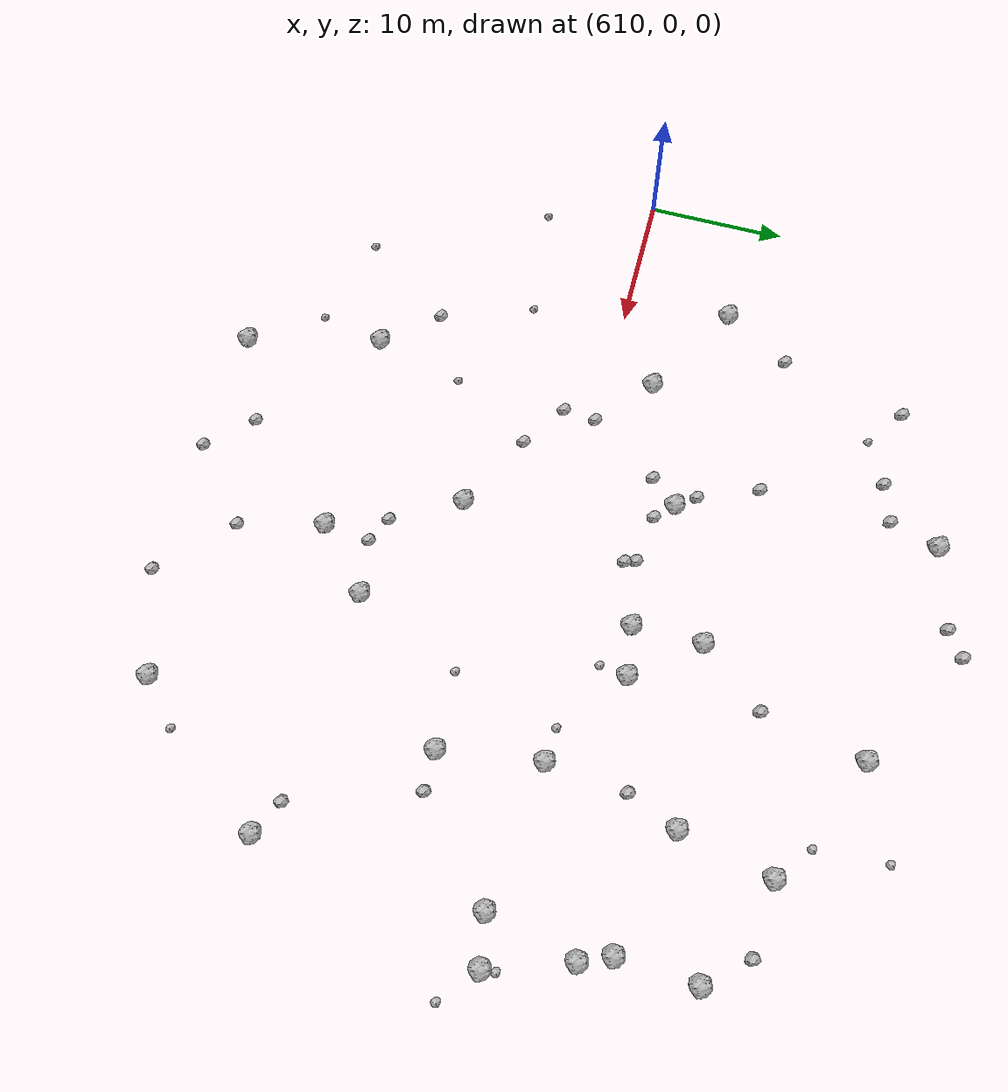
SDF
<sdf version="1.6">
 <world name="default">
  <include><uri>model://sun</uri></include>
  <model name="rock1_16_3">
   <include><uri>model://rock1</uri><pose>663.9839810396462 14.858126800491888 0.5 0 0 0</pose></include>
  </model>
  <model name="rock1_16_4">
   <include><uri>model://rock1</uri><pose>663.6268829936251 9.395405496233465 0.5 0 0 0</pose></include>
  </model>
  <model name="rock1_16_5">
   <include><uri>model://rock1</uri><pose>646.4304502982478 6.268293450251569 0.5 0 0 0</pose></include>
  </model>
  <model name="rock1_16_6">
   <include><uri>model://rock1</uri><pose>656.7651096066355 18.060827525840487 0.5 0 0 0</pose></include>
  </model>
  <model name="rock1_16_7">
   <include><uri>model://rock1</uri><pose>618.0501001737933 7.411580409489751 0.5 0 0 0</pose></include>
  </model>
  <model name="rock1_16_8">
   <include><uri>model://rock1</uri><pose>653.2391727089505 2.3955745746037564 0.5 0 0 0</pose></include>
  </model>
  <model name="rock1_16_9">
   <include><uri>model://rock1</uri><pose>628.6609307013968 -26.469568294084866 0.5 0 0 0</pose></include>
  </model>
  <model name="rock1_16_10">
   <include><uri>model://rock1</uri><pose>641.165644042891 -16.428117646576375 0.5 0 0 0</pose></include>
  </model>
  <model name="rock1_16_11">
   <include><uri>model://rock1</uri><pose>643.0220323820561 5.783675593286908 0.5 0 0 0</pose></include>
  </model>
  <model name="rock1_16_12">
   <include><uri>model://rock1</uri><pose>632.4016616064933 24.972848576259736 0.5 0 0 0</pose></include>
  </model>
  <model name="rock1_16_13">
   <include><uri>model://rock1</uri><pose>624.9864135552572 3.219790168667494 0.5 0 0 0</pose></include>
  </model>
  <model name="rock1_16_14">
   <include><uri>model://rock1</uri><pose>648.1177195782875 22.50889631202896 0.5 0 0 0</pose></include>
  </model>
  <model name="rock1_16_15">
   <include><uri>model://rock1</uri><pose>662.1648006343937 -14.443501732474807 0.5 0 0 0</pose></include>
  </model>
  <model name="rock1_16_16">
   <include><uri>model://rock1</uri><pose>655.3175418764399 11.559568303505692 0.5 0 0 0</pose></include>
  </model>
  <model name="rock1_16_17">
   <include><uri>model://rock1</uri><pose>645.3293199828311 -12.56731275519914 0.5 0 0 0</pose></include>
  </model>
  <model name="rock1_16_18">
   <include><uri>model://rock1</uri><pose>637.099699458307 -7.599706671071601 0.5 0 0 0</pose></include>
  </model>
  <model name="rock1_16_19">
   <include><uri>model://rock1</uri><pose>643.0548697132596 10.708641378340424 0.5 0 0 0</pose></include>
  </model>
  <model name="rock1_16_20">
   <include><uri>model://rock1</uri><pose>664.4875304192019 7.300606530794553 0.5 0 0 0</pose></include>
  </model>
  <model name="rock1_16_21">
   <include><uri>model://rock1</uri><pose>633.816081906783 6.769114878999865 0.5 0 0 0</pose></include>
  </model>
  <model name="rock1_16_22">
   <include><uri>model://rock1</uri><pose>663.0348168435659 1.105856339352961 0.5 0 0 0</pose></include>
  </model>
  <model name="rock1_16_23">
   <include><uri>model://rock1</uri><pose>666.3390924365694 1.7028334681616215 0.5 0 0 0</pose></include>
  </model>
  <model name="rock1_16_24">
   <include><uri>model://rock1</uri><pose>654.2324856321353 -4.658314810284992 0.5 0 0 0</pose></include>
  </model>
  <model name="rock1_16_25">
   <include><uri>model://rock1</uri><pose>654.1780633570514 -24.425604272603895 0.5 0 0 0</pose></include>
  </model>
  <model name="rock1_16_26">
   <include><uri>model://rock1</uri><pose>626.3959073936533 -16.988443525504092 0.5 0 0 0</pose></include>
  </model>
  <model name="rock2_16_0">
   <include><uri>model://rock2</uri><pose>646.5864906179073 15.31418446239718 0.3 0 0 0</pose></include>
  </model>
  <model name="rock2_16_1">
   <include><uri>model://rock2</uri><pose>623.2343438048462 -13.237329178143483 0.3 0 0 0</pose></include>
  </model>
  <model name="rock2_16_2">
   <include><uri>model://rock2</uri><pose>628.4746151739505 -2.5015913981875713 0.3 0 0 0</pose></include>
  </model>
  <model name="rock2_16_3">
   <include><uri>model://rock2</uri><pose>634.7114917537693 -23.75226121748298 0.3 0 0 0</pose></include>
  </model>
  <model name="rock2_16_4">
   <include><uri>model://rock2</uri><pose>632.113897200628 4.854968607839602 0.3 0 0 0</pose></include>
  </model>
  <model name="rock2_16_5">
   <include><uri>model://rock2</uri><pose>642.5828619441405 -22.381539772890058 0.3 0 0 0</pose></include>
  </model>
  <model name="rock2_16_6">
   <include><uri>model://rock2</uri><pose>632.7979938562333 8.16653178834715 0.3 0 0 0</pose></include>
  </model>
  <model name="rock2_16_7">
   <include><uri>model://rock2</uri><pose>638.6480440585572 4.317186263526885 0.3 0 0 0</pose></include>
  </model>
  <model name="rock2_16_8">
   <include><uri>model://rock2</uri><pose>628.702805254632 -0.14239549073555935 0.3 0 0 0</pose></include>
  </model>
  <model name="rock2_16_9">
   <include><uri>model://rock2</uri><pose>641.4804213530016 -13.148940151907567 0.3 0 0 0</pose></include>
  </model>
  <model name="rock2_16_10">
   <include><uri>model://rock2</uri><pose>631.1382092062037 12.34495188805463 0.3 0 0 0</pose></include>
  </model>
  <model name="rock2_16_11">
   <include><uri>model://rock2</uri><pose>639.6562735207523 -12.256930587889077 0.3 0 0 0</pose></include>
  </model>
  <model name="rock2_16_12">
   <include><uri>model://rock2</uri><pose>661.6848677619951 17.677503695941425 0.3 0 0 0</pose></include>
  </model>
  <model name="rock2_16_13">
   <include><uri>model://rock2</uri><pose>634.9610774949209 5.5614692642990065 0.3 0 0 0</pose></include>
  </model>
  <model name="rock2_16_14">
   <include><uri>model://rock2</uri><pose>622.8834088100508 21.165697175301325 0.3 0 0 0</pose></include>
  </model>
  <model name="rock2_16_15">
   <include><uri>model://rock2</uri><pose>656.9491932669848 -4.622210508937911 0.3 0 0 0</pose></include>
  </model>
  <model name="rock2_16_16">
   <include><uri>model://rock2</uri><pose>638.4167820820905 5.073935560369776 0.3 0 0 0</pose></include>
  </model>
  <model name="rock2_16_17">
   <include><uri>model://rock2</uri><pose>628.5829716409494 20.707551990395196 0.3 0 0 0</pose></include>
  </model>
  <model name="rock2_16_18">
   <include><uri>model://rock2</uri><pose>620.7584868652397 12.225354203652337 0.3 0 0 0</pose></include>
  </model>
  <model name="rock2_16_19">
   <include><uri>model://rock2</uri><pose>631.2925800810818 21.568844905576654 0.3 0 0 0</pose></include>
  </model>
  <model name="rock2_16_20">
   <include><uri>model://rock2</uri><pose>631.639676542554 -4.676829322956227 0.3 0 0 0</pose></include>
  </model>
  <model name="rock2_16_21">
   <include><uri>model://rock2</uri><pose>659.7995766067304 -13.24303045049394 0.3 0 0 0</pose></include>
  </model>
  <model name="rock2_16_22">
   <include><uri>model://rock2</uri><pose>647.1306670397153 -26.901921749620165 0.3 0 0 0</pose></include>
  </model>
  <model name="rock2_16_23">
   <include><uri>model://rock2</uri><pose>653.8246148984773 8.067056057168116 0.3 0 0 0</pose></include>
  </model>
  <model name="rock2_16_24">
   <include><uri>model://rock2</uri><pose>639.730251732797 27.702002359325995 0.3 0 0 0</pose></include>
  </model>
  <model name="rock2_16_25">
   <include><uri>model://rock2</uri><pose>638.0244906125341 26.471331310250854 0.3 0 0 0</pose></include>
  </model>
  <model name="rock2_16_26">
   <include><uri>model://rock2</uri><pose>637.4685186895143 -26.748063362431413 0.3 0 0 0</pose></include>
  </model>
  <model name="rock3_16_0">
   <include><uri>model://rock3</uri><pose>648.9149960111968 -4.85661123766544 0.2 0 0 0</pose></include>
  </model>
  <model name="rock3_16_1">
   <include><uri>model://rock3</uri><pose>646.151641814491 4.334005271623944 0.2 0 0 0</pose></include>
  </model>
  <model name="rock3_16_2">
   <include><uri>model://rock3</uri><pose>628.0626981140791 -10.581655896055796 0.2 0 0 0</pose></include>
  </model>
  <model name="rock3_16_3">
   <include><uri>model://rock3</uri><pose>612.7210151270381 -7.719544480094342 0.2 0 0 0</pose></include>
  </model>
  <model name="rock3_16_4">
   <include><uri>model://rock3</uri><pose>650.9012594192012 2.575643669161316 0.2 0 0 0</pose></include>
  </model>
  <model name="rock3_16_5">
   <include><uri>model://rock3</uri><pose>666.2638243871952 2.6508230700573847 0.2 0 0 0</pose></include>
  </model>
  <model name="rock3_16_6">
   <include><uri>model://rock3</uri><pose>618.5923656857076 -19.82009647357542 0.2 0 0 0</pose></include>
  </model>
  <model name="rock3_16_7">
   <include><uri>model://rock3</uri><pose>654.3741520507878 20.083534757408707 0.2 0 0 0</pose></include>
  </model>
  <model name="rock3_16_8">
   <include><uri>model://rock3</uri><pose>625.4259821247545 -21.623928841637216 0.2 0 0 0</pose></include>
  </model>
  <model name="rock3_16_9">
   <include><uri>model://rock3</uri><pose>657.126797569702 -21.82990628424026 0.2 0 0 0</pose></include>
  </model>
  <model name="rock3_16_10">
   <include><uri>model://rock3</uri><pose>620.9330026097596 -6.742859566757527 0.2 0 0 0</pose></include>
  </model>
  <model name="rock3_16_11">
   <include><uri>model://rock3</uri><pose>654.0763994350324 25.020064738806937 0.2 0 0 0</pose></include>
  </model>
  <model name="rock3_16_12">
   <include><uri>model://rock3</uri><pose>625.577772332965 19.12610751233835 0.2 0 0 0</pose></include>
  </model>
  <model name="rock3_16_13">
   <include><uri>model://rock3</uri><pose>668.7685665791763 -0.40441120361470695 0.2 0 0 0</pose></include>
  </model>
 </world>
</sdf>
